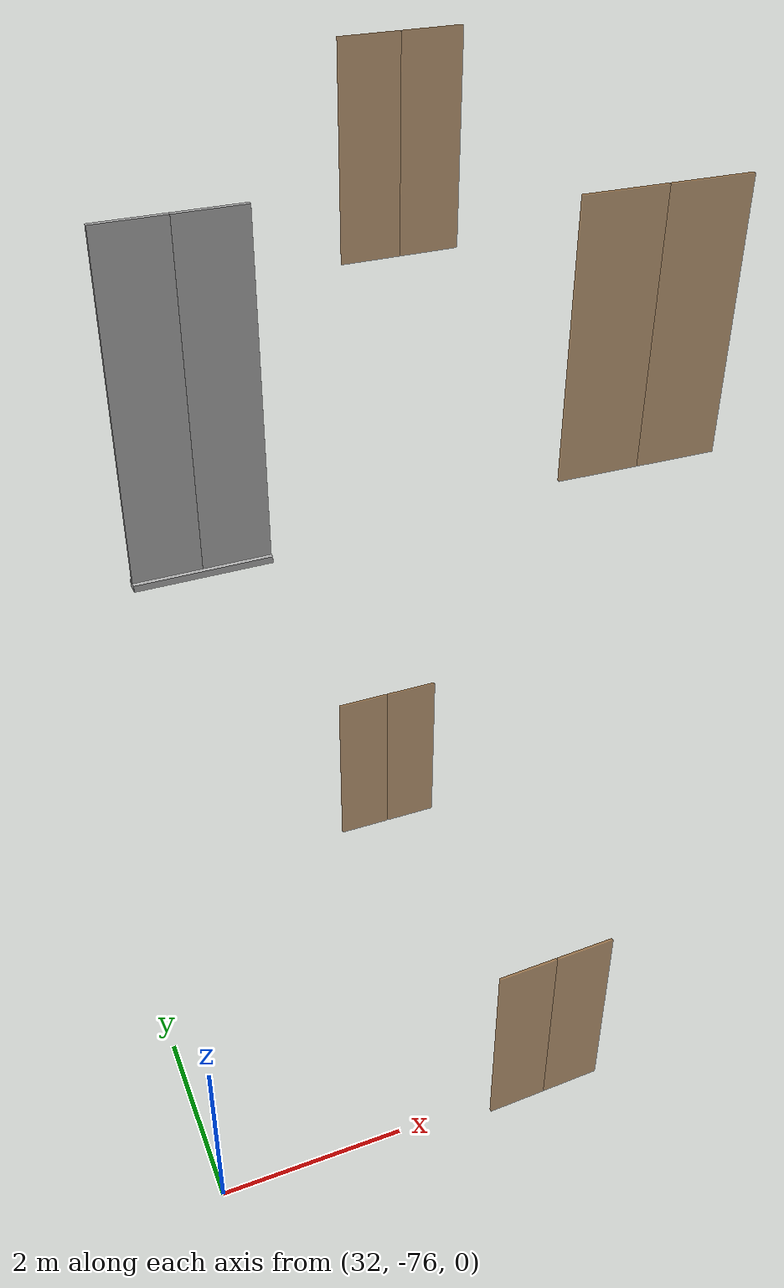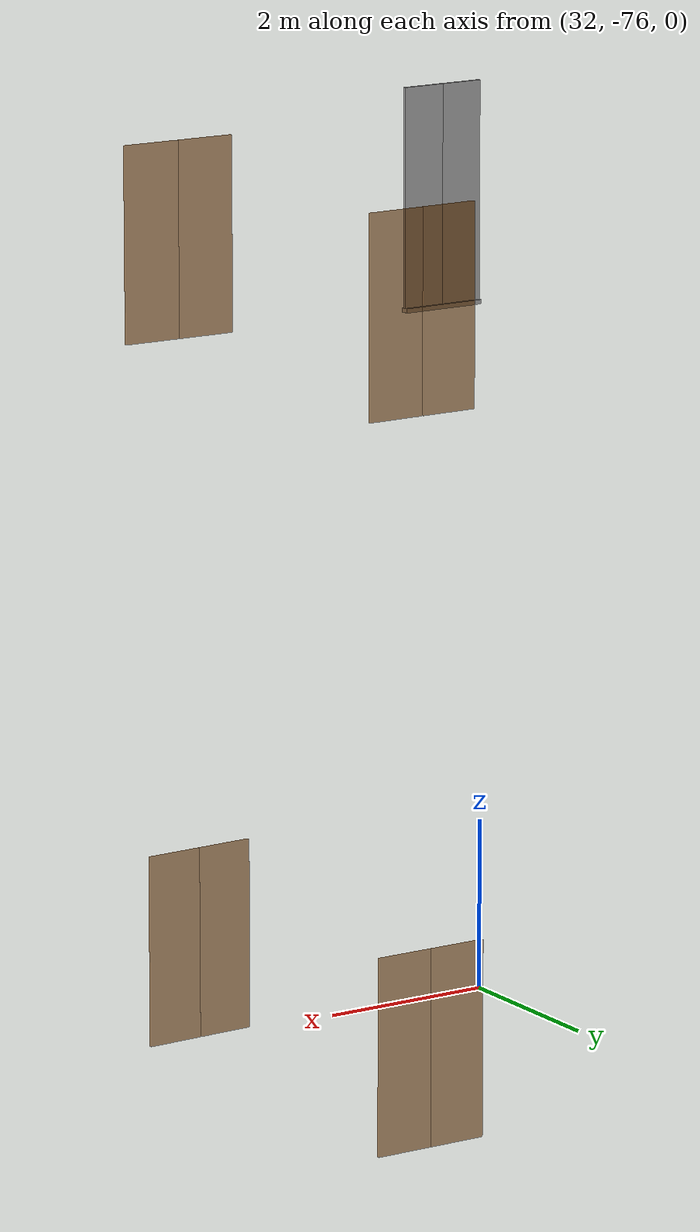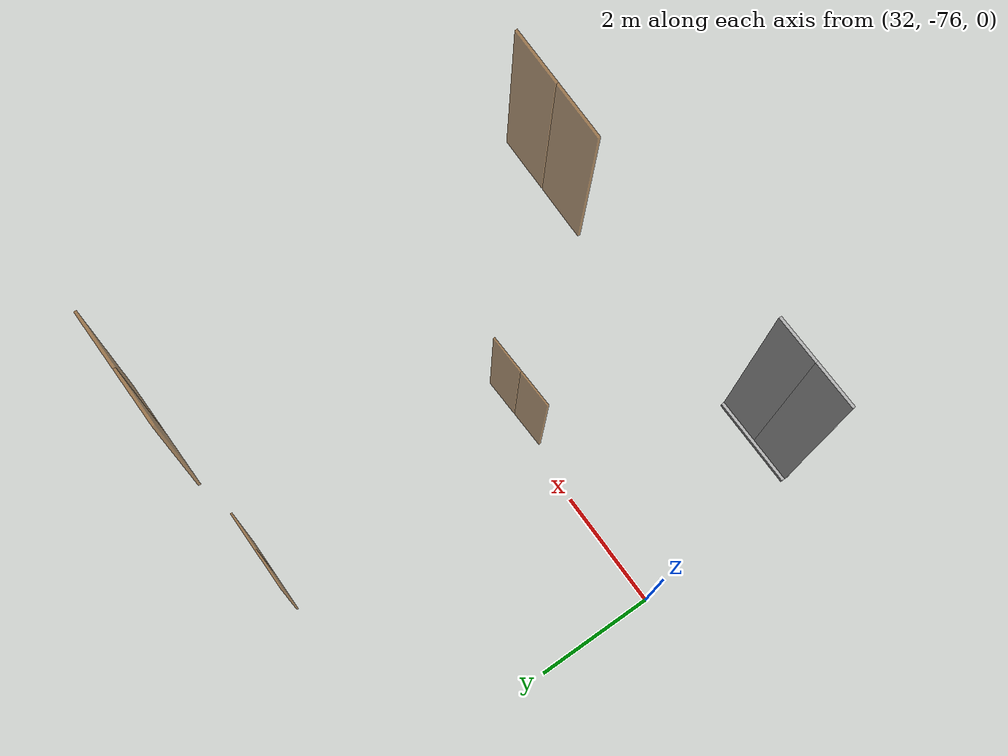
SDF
<sdf version="1.7">
 <world name="estce">
  <model name="TD1011AL">
   <pose>35.694736283854354 -76.12425568237657 0.0 0 0 0.03052550844454736</pose>
   <link name="right">
    <pose>0.333686512071335 0 1.11 0 0 0</pose>
    <visual name="right_visual">
     <geometry><box><size>0.65737302414267 0.03 2.2</size></box></geometry>
     <material><ambient>0.5 0.25 0 0.6</ambient><diffuse>0.5 0.25 0 0.6</diffuse></material>
    </visual>
    <collision name="right_collision">
     <geometry><box><size>0.65737302414267 0.03 2.2</size></box></geometry>
     <surface><contact><collide_bitmask>0x02</collide_bitmask></contact></surface>
    </collision>
    <inertial>
     <mass>50.0</mass>
     <inertia><ixx>20.17041666666667</ixx><iyy>21.967247053627002</iyy><izz>1.8043303869603309</izz></inertia>
    </inertial>
   </link>
   <joint name="right_joint" type="revolute">
    <parent>world</parent>
    <child>right</child>
    <axis><xyz>0 0 -1</xyz><limit><lower>0</lower><upper>1.57</upper></limit></axis>
    <pose>0.333686512071335 0 0 0 0 0</pose>
   </joint>
   <link name="left">
    <pose>-0.333686512071335 0 1.11 0 0 0</pose>
    <visual name="left_visual">
     <geometry><box><size>0.65737302414267 0.03 2.2</size></box></geometry>
     <material><ambient>0.5 0.25 0 0.6</ambient><diffuse>0.5 0.25 0 0.6</diffuse></material>
    </visual>
    <collision name="left_collision">
     <geometry><box><size>0.65737302414267 0.03 2.2</size></box></geometry>
     <surface><contact><collide_bitmask>0x02</collide_bitmask></contact></surface>
    </collision>
    <inertial>
     <mass>50.0</mass>
     <inertia><ixx>20.17041666666667</ixx><iyy>21.967247053627002</iyy><izz>1.8043303869603309</izz></inertia>
    </inertial>
   </link>
   <joint name="left_joint" type="revolute">
    <parent>world</parent>
    <child>left</child>
    <axis><xyz>0 0 -1</xyz><limit><lower>-1.57</lower><upper>0</upper></limit></axis>
    <pose>-0.333686512071335 0 0 0 0 0</pose>
   </joint>
   <plugin name="door" filename="libdoor.so">
    <v_max_door>0.5</v_max_door>
    <a_max_door>0.3</a_max_door>
    <a_nom_door>0.15</a_nom_door>
    <dx_min_door>0.01</dx_min_door>
    <f_max_door>500.0</f_max_door>
    <door name="TD1011AL" type="DoubleSwingDoor" left_joint_name="left_joint" right_joint_name="right_joint"/>
   </plugin>
  </model>
  <model name="TD1010AL2">
   <pose>35.71148017144721 -71.4268769761182 0.0 0 0 3.1356810753236894</pose>
   <link name="right">
    <pose>0.3312699130296567 0 1.11 0 0 0</pose>
    <visual name="right_visual">
     <geometry><box><size>0.6525398260593134 0.03 2.2</size></box></geometry>
     <material><ambient>0.5 0.25 0 0.6</ambient><diffuse>0.5 0.25 0 0.6</diffuse></material>
    </visual>
    <collision name="right_collision">
     <geometry><box><size>0.6525398260593134 0.03 2.2</size></box></geometry>
     <surface><contact><collide_bitmask>0x02</collide_bitmask></contact></surface>
    </collision>
    <inertial>
     <mass>50.0</mass>
     <inertia><ixx>20.17041666666667</ixx><iyy>21.940867602473</iyy><izz>1.7779509358063292</izz></inertia>
    </inertial>
   </link>
   <joint name="right_joint" type="revolute">
    <parent>world</parent>
    <child>right</child>
    <axis><xyz>0 0 -1</xyz><limit><lower>0</lower><upper>1.57</upper></limit></axis>
    <pose>0.3312699130296567 0 0 0 0 0</pose>
   </joint>
   <link name="left">
    <pose>-0.3312699130296567 0 1.11 0 0 0</pose>
    <visual name="left_visual">
     <geometry><box><size>0.6525398260593134 0.03 2.2</size></box></geometry>
     <material><ambient>0.5 0.25 0 0.6</ambient><diffuse>0.5 0.25 0 0.6</diffuse></material>
    </visual>
    <collision name="left_collision">
     <geometry><box><size>0.6525398260593134 0.03 2.2</size></box></geometry>
     <surface><contact><collide_bitmask>0x02</collide_bitmask></contact></surface>
    </collision>
    <inertial>
     <mass>50.0</mass>
     <inertia><ixx>20.17041666666667</ixx><iyy>21.940867602473</iyy><izz>1.7779509358063292</izz></inertia>
    </inertial>
   </link>
   <joint name="left_joint" type="revolute">
    <parent>world</parent>
    <child>left</child>
    <axis><xyz>0 0 -1</xyz><limit><lower>-1.57</lower><upper>0</upper></limit></axis>
    <pose>-0.3312699130296567 0 0 0 0 0</pose>
   </joint>
   <plugin name="door" filename="libdoor.so">
    <v_max_door>0.5</v_max_door>
    <a_max_door>0.3</a_max_door>
    <a_nom_door>0.15</a_nom_door>
    <dx_min_door>0.01</dx_min_door>
    <f_max_door>500.0</f_max_door>
    <door name="TD1010AL2" type="DoubleSwingDoor" left_joint_name="left_joint" right_joint_name="right_joint"/>
   </plugin>
  </model>
  <model name="TD1108AL2">
   <pose>35.858100892995125 -76.21378531045255 8.0 0 0 -0.021554127307024953</pose>
   <link name="right">
    <pose>0.33956049363497615 0 1.11 0 0 0</pose>
    <visual name="right_visual">
     <geometry><box><size>0.6691209872699523 0.03 2.2</size></box></geometry>
     <material><ambient>0.5 0.25 0 0.6</ambient><diffuse>0.5 0.25 0 0.6</diffuse></material>
    </visual>
    <collision name="right_collision">
     <geometry><box><size>0.6691209872699523 0.03 2.2</size></box></geometry>
     <surface><contact><collide_bitmask>0x02</collide_bitmask></contact></surface>
    </collision>
    <inertial>
     <mass>50.0</mass>
     <inertia><ixx>20.17041666666667</ixx><iyy>22.03217873168799</iyy><izz>1.8692620650213154</izz></inertia>
    </inertial>
   </link>
   <joint name="right_joint" type="revolute">
    <parent>world</parent>
    <child>right</child>
    <axis><xyz>0 0 -1</xyz><limit><lower>0</lower><upper>1.57</upper></limit></axis>
    <pose>0.33956049363497615 0 0 0 0 0</pose>
   </joint>
   <link name="left">
    <pose>-0.33956049363497615 0 1.11 0 0 0</pose>
    <visual name="left_visual">
     <geometry><box><size>0.6691209872699523 0.03 2.2</size></box></geometry>
     <material><ambient>0.5 0.25 0 0.6</ambient><diffuse>0.5 0.25 0 0.6</diffuse></material>
    </visual>
    <collision name="left_collision">
     <geometry><box><size>0.6691209872699523 0.03 2.2</size></box></geometry>
     <surface><contact><collide_bitmask>0x02</collide_bitmask></contact></surface>
    </collision>
    <inertial>
     <mass>50.0</mass>
     <inertia><ixx>20.17041666666667</ixx><iyy>22.03217873168799</iyy><izz>1.8692620650213154</izz></inertia>
    </inertial>
   </link>
   <joint name="left_joint" type="revolute">
    <parent>world</parent>
    <child>left</child>
    <axis><xyz>0 0 -1</xyz><limit><lower>-1.57</lower><upper>0</upper></limit></axis>
    <pose>-0.33956049363497615 0 0 0 0 0</pose>
   </joint>
   <plugin name="door" filename="libdoor.so">
    <v_max_door>0.5</v_max_door>
    <a_max_door>0.3</a_max_door>
    <a_nom_door>0.15</a_nom_door>
    <dx_min_door>0.01</dx_min_door>
    <f_max_door>500.0</f_max_door>
    <door name="TD1108AL2" type="DoubleSwingDoor" left_joint_name="left_joint" right_joint_name="right_joint"/>
   </plugin>
  </model>
  <model name="TD1107AL2">
   <pose>35.85232358607331 -71.40206245660406 8.0 0 0 -3.1338843591328</pose>
   <link name="right">
    <pose>0.3271891199038359 0 1.11 0 0 0</pose>
    <visual name="right_visual">
     <geometry><box><size>0.6443782398076718 0.03 2.2</size></box></geometry>
     <material><ambient>0.5 0.25 0 0.6</ambient><diffuse>0.5 0.25 0 0.6</diffuse></material>
    </visual>
    <collision name="right_collision">
     <geometry><box><size>0.6443782398076718 0.03 2.2</size></box></geometry>
     <surface><contact><collide_bitmask>0x02</collide_bitmask></contact></surface>
    </collision>
    <inertial>
     <mass>50.0</mass>
     <inertia><ixx>20.17041666666667</ixx><iyy>21.89676381640681</iyy><izz>1.7338471497401395</izz></inertia>
    </inertial>
   </link>
   <joint name="right_joint" type="revolute">
    <parent>world</parent>
    <child>right</child>
    <axis><xyz>0 0 -1</xyz><limit><lower>0</lower><upper>1.57</upper></limit></axis>
    <pose>0.3271891199038359 0 0 0 0 0</pose>
   </joint>
   <link name="left">
    <pose>-0.3271891199038359 0 1.11 0 0 0</pose>
    <visual name="left_visual">
     <geometry><box><size>0.6443782398076718 0.03 2.2</size></box></geometry>
     <material><ambient>0.5 0.25 0 0.6</ambient><diffuse>0.5 0.25 0 0.6</diffuse></material>
    </visual>
    <collision name="left_collision">
     <geometry><box><size>0.6443782398076718 0.03 2.2</size></box></geometry>
     <surface><contact><collide_bitmask>0x02</collide_bitmask></contact></surface>
    </collision>
    <inertial>
     <mass>50.0</mass>
     <inertia><ixx>20.17041666666667</ixx><iyy>21.89676381640681</iyy><izz>1.7338471497401395</izz></inertia>
    </inertial>
   </link>
   <joint name="left_joint" type="revolute">
    <parent>world</parent>
    <child>left</child>
    <axis><xyz>0 0 -1</xyz><limit><lower>-1.57</lower><upper>0</upper></limit></axis>
    <pose>-0.3271891199038359 0 0 0 0 0</pose>
   </joint>
   <plugin name="door" filename="libdoor.so">
    <v_max_door>0.5</v_max_door>
    <a_max_door>0.3</a_max_door>
    <a_nom_door>0.15</a_nom_door>
    <dx_min_door>0.01</dx_min_door>
    <f_max_door>500.0</f_max_door>
    <door name="TD1107AL2" type="DoubleSwingDoor" left_joint_name="left_joint" right_joint_name="right_joint"/>
   </plugin>
  </model>
  <model name="ShaftDoor_lift1td1_L2_lift1_door">
   <pose>32.320640929890104 -76.33376668522129 8.0 0 0 0.0</pose>
   <link name="right_door">
    <pose>0.25 0 1.25 0 0 0</pose>
    <visual name="right_door_visual">
     <geometry><box><size>0.5 0.03 2.5</size></box></geometry>
     <material>
      <ambient>0.5 0.5 0.5 1</ambient>
      <diffuse>0.7 0.7 0.7 1</diffuse>
      <specular>0.6 0.6 0.6 1</specular>
      <emissive>0.1 0.1 0.1 1</emissive>
     </material>
    </visual>
    <collision name="right_door_collision">
     <geometry><box><size>0.5 0.03 2.5</size></box></geometry>
     <surface><contact><collide_bitmask>0x02</collide_bitmask></contact></surface>
    </collision>
   </link>
   <joint name="right_joint" type="prismatic">
    <parent>world</parent>
    <child>right_door</child>
    <axis><xyz>1 0 0</xyz><limit><lower>0</lower><upper>0.5</upper></limit></axis>
   </joint>
   <link name="left_door">
    <pose>-0.25 0 1.25 0 0 0</pose>
    <visual name="left_door_visual">
     <geometry><box><size>0.5 0.03 2.5</size></box></geometry>
     <material>
      <ambient>0.5 0.5 0.5 1</ambient>
      <diffuse>0.7 0.7 0.7 1</diffuse>
      <specular>0.6 0.6 0.6 1</specular>
      <emissive>0.1 0.1 0.1 1</emissive>
     </material>
    </visual>
    <collision name="left_door_collision">
     <geometry><box><size>0.5 0.03 2.5</size></box></geometry>
     <surface><contact><collide_bitmask>0x02</collide_bitmask></contact></surface>
    </collision>
   </link>
   <joint name="left_joint" type="prismatic">
    <parent>world</parent>
    <child>left_door</child>
    <axis><xyz>1 0 0</xyz><limit><lower>-0.5</lower><upper>0</upper></limit></axis>
   </joint>
   <link name="ramp">
    <pose>0 0 -0.025 0 0 0</pose>
    <visual name="ramp_visual">
     <geometry><box><size>1.0 0.1 0.05</size></box></geometry>
     <material>
      <ambient>0.5 0.5 0.5 1</ambient>
      <diffuse>0.7 0.7 0.7 1</diffuse>
      <specular>0.6 0.6 0.6 1</specular>
      <emissive>0.1 0.1 0.1 1</emissive>
     </material>
    </visual>
    <collision name="ramp_collision">
     <geometry><box><size>1.0 0.1 0.05</size></box></geometry>
     <surface><contact><collide_bitmask>0x02</collide_bitmask></contact></surface>
    </collision>
   </link>
   <joint name="ramp_joint" type="fixed"><parent>world</parent><child>ramp</child></joint>
   <plugin name="door" filename="libdoor.so">
    <v_max_door>0.3</v_max_door>
    <a_max_door>0.2</a_max_door>
    <a_nom_door>0.1</a_nom_door>
    <dx_min_door>0.0001</dx_min_door>
    <f_max_door>35.0</f_max_door>
    <door left_joint_name="left_joint" name="ShaftDoor_lift1td1_L2_lift1_door" right_joint_name="right_joint" type="DoubleSlidingDoor"/>
   </plugin>
  </model>
 </world>
</sdf>
